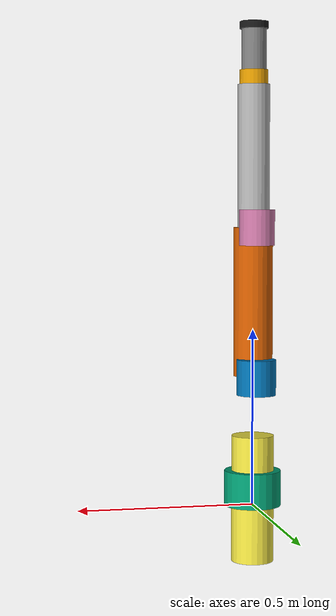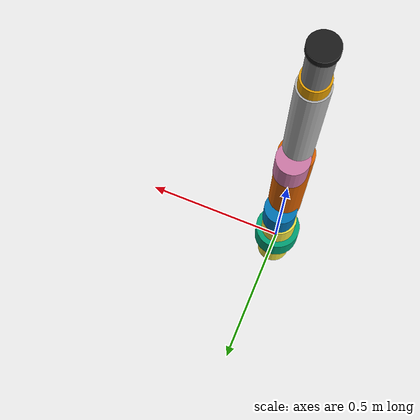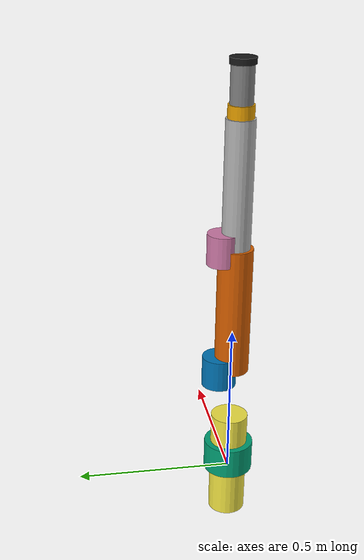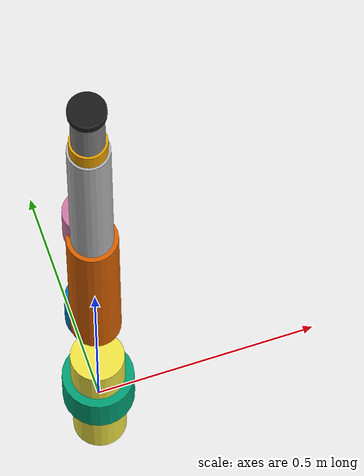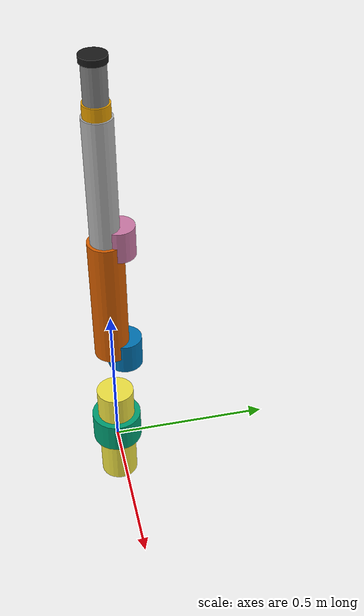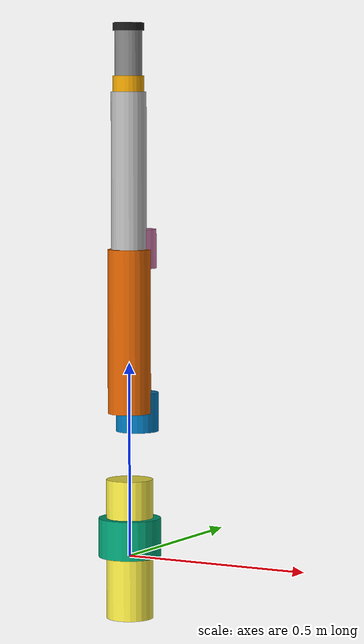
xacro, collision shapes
<?xml version="1.0"?>
<robot xmlns:xacro="http://www.ros.org/wiki/xacro" name="iiwa1">

  <xacro:macro name="iiwa_macro" params="parent prefix *origin">

    <material name="${prefix}gray">
      <color rgba="0.5 0.5 0.5 1.0"/>
    </material>

    <link name="${prefix}iiwa_base"/>

    <joint name="${prefix}iiwa_root_joint" type="fixed">
      <xacro:insert_block name="origin" />
      <parent link="${parent}"/>
      <child link="${prefix}iiwa_base"/>
    </joint>

    <joint name="${prefix}iiwa_base_joint" type="fixed">
      <origin rpy="0.0 0 0" xyz="0 0 0"/>
      <parent link="${prefix}iiwa_base"/>
      <child link="${prefix}link_0"/>
    </joint>

    <link name="${prefix}link_0">
      <visual>
        <origin rpy="0.0 0 0" xyz="0 0 0"/>
        <geometry><mesh filename="file://$(find iiwa_description)/meshes/lbr_iiwa_14_r820/visual/base_link.dae"/></geometry>
      </visual>
      <collision>
        <origin rpy="0 0 0" xyz="0 0 0.05"/>
        <geometry><cylinder radius="0.08" length="0.1"/></geometry>
      </collision>
      <inertial>
        <origin xyz="0 0 0.05" rpy="0 0 0"/>
        <mass value="5"/>
        <inertia ixx="0.05" ixy="0" ixz="0" iyy="0.06" iyz="0" izz="0.03"/>
      </inertial>
    </link>

    <link name="${prefix}link_1">
      <visual>
        <geometry><mesh filename="file://$(find iiwa_description)/meshes/lbr_iiwa_14_r820/visual/link_1.dae"/></geometry>
      </visual>
      <collision>
        <origin xyz="0 0 0.01" rpy="0 0 0"/>
        <geometry><cylinder radius="0.06" length="0.36"/></geometry>
      </collision>
      <inertial>
        <origin xyz="0 0 0.01" rpy="0 0 0"/>
        <mass value="4"/>
        <inertia ixx="0.05" ixy="0" ixz="0" iyy="0.05" iyz="0" izz="0.005"/>
      </inertial>
    </link>

    <link name="${prefix}link_2">
      <visual>
        <geometry><mesh filename="file://$(find iiwa_description)/meshes/lbr_iiwa_14_r820/visual/link_2.dae"/></geometry>
      </visual>
      <collision>
        <origin xyz="0 0.04 0" rpy="0 0 0"/>
        <geometry><cylinder radius="0.055" length="0.1"/></geometry>
      </collision>
      <inertial>
        <origin xyz="0 0.04 0" rpy="0 0 0"/>
        <mass value="4"/>
        <inertia ixx="0.04" ixy="0" ixz="0" iyy="0.005" iyz="0" izz="0.04"/>
      </inertial>
    </link>

    <link name="${prefix}link_3">
      <visual>
        <geometry><mesh filename="file://$(find iiwa_description)/meshes/lbr_iiwa_14_r820/visual/link_3.dae"/></geometry>
      </visual>
      <collision>
        <origin xyz="0 0 0.21" rpy="0 0 0"/>
        <geometry><cylinder radius="0.055" length="0.42"/></geometry>
      </collision>
      <inertial>
        <origin xyz="0 0 0.21" rpy="0 0 0"/>
        <mass value="3"/>
        <inertia ixx="0.06" ixy="0" ixz="0" iyy="0.06" iyz="0" izz="0.004"/>
      </inertial>
    </link>

    <link name="${prefix}link_4">
      <visual>
        <geometry><mesh filename="file://$(find iiwa_description)/meshes/lbr_iiwa_14_r820/visual/link_4.dae"/></geometry>
      </visual>
      <collision>
        <origin xyz="0 0.04 0" rpy="0 0 0"/>
        <geometry><cylinder radius="0.05" length="0.1"/></geometry>
      </collision>
      <inertial>
        <origin xyz="0 0.04 0" rpy="0 0 0"/>
        <mass value="2.7"/>
        <inertia ixx="0.025" ixy="0" ixz="0" iyy="0.003" iyz="0" izz="0.025"/>
      </inertial>
    </link>

    <link name="${prefix}link_5">
      <visual>
        <geometry><mesh filename="file://$(find iiwa_description)/meshes/lbr_iiwa_14_r820/visual/link_5.dae"/></geometry>
      </visual>
      <collision>
        <origin xyz="0 0 0.2" rpy="0 0 0"/>
        <geometry><cylinder radius="0.045" length="0.4"/></geometry>
      </collision>
      <inertial>
        <origin xyz="0 0 0.2" rpy="0 0 0"/>
        <mass value="1.7"/>
        <inertia ixx="0.03" ixy="0" ixz="0" iyy="0.03" iyz="0" izz="0.002"/>
      </inertial>
    </link>

    <link name="${prefix}link_6">
      <visual>
        <geometry><mesh filename="file://$(find iiwa_description)/meshes/lbr_iiwa_14_r820/visual/link_6.dae"/></geometry>
      </visual>
      <collision>
        <origin xyz="0 0 0" rpy="0 0 0"/>
        <geometry><cylinder radius="0.04" length="0.08"/></geometry>
      </collision>
      <inertial>
        <origin xyz="0 0 0.04" rpy="0 0 0"/>
        <mass value="1.8"/>
        <inertia ixx="0.015" ixy="0" ixz="0" iyy="0.015" iyz="0" izz="0.002"/>
      </inertial>
    </link>

    <link name="${prefix}link_7">
      <visual>
        <origin rpy="0 0 0" xyz="0 0 0.07"/>
        <geometry><mesh filename="file://$(find iiwa_description)/meshes/lbr_iiwa_14_r820/visual/link_7_2.stl" scale="0.001 0.001 0.001"/></geometry>
        <material name="${prefix}gray"/>
      </visual>
      <collision>
        <origin rpy="0 0 0" xyz="0 0 0.077"/>
        <geometry><cylinder radius="0.035" length="0.154"/></geometry>
      </collision>
      <inertial>
        <origin xyz="0 0 0.077" rpy="0 0 0"/>
        <mass value="0.43"/>
        <inertia ixx="0.002" ixy="0" ixz="0" iyy="0.002" iyz="0" izz="0.0005"/>
      </inertial>
    </link>

    <link name="${prefix}tool0"/>

    <joint name="${prefix}joint_a1" type="revolute">
      <origin rpy="0 0 0" xyz="0 0 0.01"/>
      <parent link="${prefix}link_0"/><child link="${prefix}link_1"/>
      <axis xyz="0 0 1"/>
      <limit effort="320" lower="-2.9668" upper="2.9668" velocity="1.4834"/>
      <dynamics damping="5.0" friction="1.0"/>
    </joint>

    <joint name="${prefix}joint_a2" type="revolute">
      <origin rpy="0 0 0" xyz="0 0 0.36"/>
      <parent link="${prefix}link_1"/><child link="${prefix}link_2"/>
      <axis xyz="0 1 0"/>
      <limit effort="320" lower="-2.0942" upper="2.0942" velocity="1.4834"/>
      <dynamics damping="5.0" friction="1.0"/>
    </joint>

    <joint name="${prefix}joint_a3" type="revolute">
      <origin rpy="0 0 0" xyz="0 0 0"/>
      <parent link="${prefix}link_2"/><child link="${prefix}link_3"/>
      <axis xyz="0 0 1"/>
      <limit effort="176" lower="-2.9668" upper="2.9668" velocity="1.7452"/>
      <dynamics damping="5.0" friction="1.0"/>
    </joint>

    <joint name="${prefix}joint_a4" type="revolute">
      <origin rpy="0 0 0" xyz="0 0 0.42"/>
      <parent link="${prefix}link_3"/><child link="${prefix}link_4"/>
      <axis xyz="0 -1 0"/>
      <limit effort="176" lower="-2.0942" upper="2.0942" velocity="1.3089"/>
      <dynamics damping="5.0" friction="1.0"/>
    </joint>

    <joint name="${prefix}joint_a5" type="revolute">
      <origin rpy="0 0 0" xyz="0 0 0"/>
      <parent link="${prefix}link_4"/><child link="${prefix}link_5"/>
      <axis xyz="0 0 1"/>
      <limit effort="110" lower="-2.9668" upper="2.9668" velocity="2.2688"/>
      <dynamics damping="3.0" friction="0.5"/>
    </joint>

    <joint name="${prefix}joint_a6" type="revolute">
      <origin rpy="0 0 0" xyz="0 0 0.4"/>
      <parent link="${prefix}link_5"/><child link="${prefix}link_6"/>
      <axis xyz="0 1 0"/>
      <limit effort="40" lower="-2.0942" upper="2.0942" velocity="2.356"/>
      <dynamics damping="3.0" friction="0.5"/>
    </joint>

    <joint name="${prefix}joint_a7" type="revolute">
      <origin rpy="0 0 0" xyz="0 0 0"/>
      <parent link="${prefix}link_6"/><child link="${prefix}link_7"/>
      <axis xyz="0 0 1"/>
      <limit effort="40" lower="-3.0541" upper="3.0541" velocity="2.356"/>
      <dynamics damping="2.0" friction="0.3"/>
    </joint>

    <joint name="${prefix}joint_a7-tool0" type="fixed">
      <origin rpy="0 0 0" xyz="0 0 0.154"/>
      <parent link="${prefix}link_7"/><child link="${prefix}tool0"/>
    </joint>

    <link name="${prefix}vacuum_gripper_link">
      <visual>
        <origin xyz="0 0 0.01" rpy="0 0 0"/>
        <geometry><cylinder radius="0.04" length="0.02"/></geometry>
        <material name="Black"><color rgba="0.1 0.1 0.1 1"/></material>
      </visual>
      <collision name="${prefix}vacuum_gripper_collision">
        <origin xyz="0 0 0.01" rpy="0 0 0"/>
        <geometry><cylinder radius="0.04" length="0.02"/></geometry>
      </collision>
      <inertial>
        <mass value="0.1"/>
        <inertia ixx="0.0001" ixy="0" ixz="0" iyy="0.0001" iyz="0" izz="0.0001"/>
      </inertial>
    </link>

    <joint name="${prefix}vacuum_gripper_joint" type="fixed">
      <parent link="${prefix}tool0"/>
      <child link="${prefix}vacuum_gripper_link"/>
      <origin xyz="0 0 0" rpy="0 0 0"/>
    </joint>

    <gazebo reference="${prefix}vacuum_gripper_link">
      <sensor name="suction_contact" type="contact">
        <contact>
          <collision>${prefix}vacuum_gripper_collision</collision>
        </contact>
        <update_rate>30</update_rate>
        <always_on>true</always_on>
      </sensor>
    </gazebo>

    <gazebo reference="${prefix}vacuum_gripper_joint">
      <preserveFixedJoint>true</preserveFixedJoint>
      <disableFixedJointLumping>true</disableFixedJointLumping>
    </gazebo>

  </xacro:macro>

  <link name="world"/>
  <xacro:iiwa_macro parent="world" prefix="iiwa_">
    <origin xyz="0 0 0" rpy="0 0 0"/>
  </xacro:iiwa_macro>

  <ros2_control name="iiwa1_hardware" type="system">
    <hardware><plugin>gz_ros2_control/GazeboSimSystem</plugin></hardware>
    <joint name="iiwa_joint_a1"><command_interface name="position"/><state_interface name="position"/><state_interface name="velocity"/></joint>
    <joint name="iiwa_joint_a2"><command_interface name="position"/><state_interface name="position"/><state_interface name="velocity"/></joint>
    <joint name="iiwa_joint_a3"><command_interface name="position"/><state_interface name="position"/><state_interface name="velocity"/></joint>
    <joint name="iiwa_joint_a4"><command_interface name="position"/><state_interface name="position"/><state_interface name="velocity"/></joint>
    <joint name="iiwa_joint_a5"><command_interface name="position"/><state_interface name="position"/><state_interface name="velocity"/></joint>
    <joint name="iiwa_joint_a6"><command_interface name="position"/><state_interface name="position"/><state_interface name="velocity"/></joint>
    <joint name="iiwa_joint_a7"><command_interface name="position"/><state_interface name="position"/><state_interface name="velocity"/></joint>
  </ros2_control>

  <gazebo>
    <plugin filename="libignition-gazebo-detachable-joint-system.so"
            name="ignition::gazebo::systems::DetachableJoint">
      <parent_link>iiwa_vacuum_gripper_link</parent_link>
      <child_model>package</child_model>
      <child_link>package_link</child_link>
      <output_topic>/iiwa/gripper/state_package</output_topic>
      <detach_topic>/iiwa/gripper/detach_package</detach_topic>
      <attach_topic>/iiwa/gripper/attach_package</attach_topic>
    </plugin>
  </gazebo>
  <gazebo>
    <plugin filename="libignition-gazebo-detachable-joint-system.so"
            name="ignition::gazebo::systems::DetachableJoint">
      <parent_link>iiwa_vacuum_gripper_link</parent_link>
      <child_model>package2</child_model>
      <child_link>package2_link</child_link>
      <output_topic>/iiwa/gripper/state_package2</output_topic>
      <detach_topic>/iiwa/gripper/detach_package2</detach_topic>
      <attach_topic>/iiwa/gripper/attach_package2</attach_topic>
    </plugin>
  </gazebo>

  <gazebo>
    <plugin filename="libgz_ros2_control-system.so" name="gz_ros2_control::GazeboSimROS2ControlPlugin">
      <parameters>$(find iiwa_description)/config/iiwa1_controllers.yaml</parameters>
      <robot_param>robot_description</robot_param>
      <robot_param_node>robot_state_publisher</robot_param_node>
      <ros>
        <namespace>iiwa</namespace>
        <remapping>controller_manager/robot_description:=robot_description</remapping>
      </ros>
    </plugin>
  </gazebo>
</robot>
